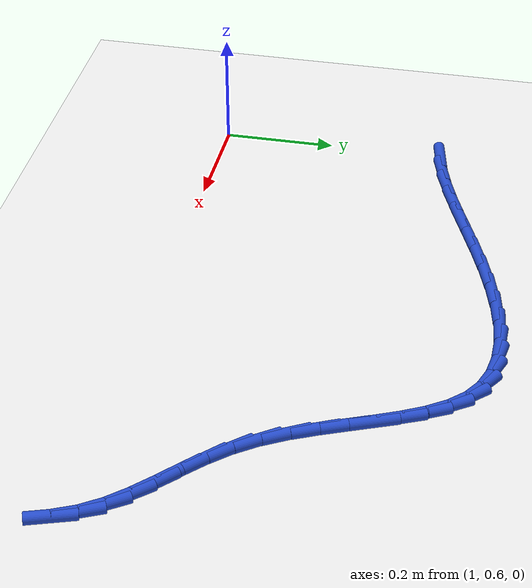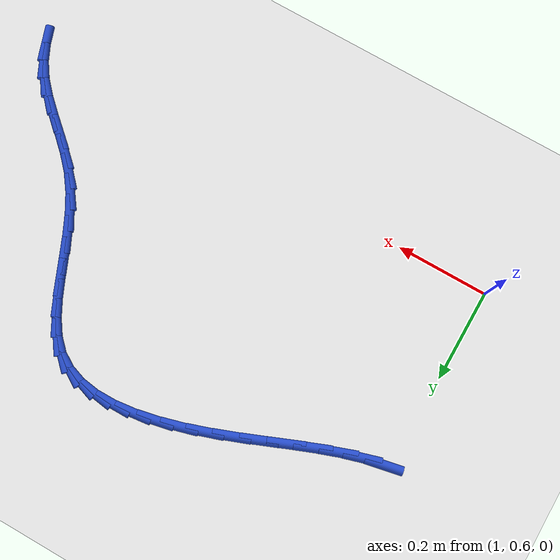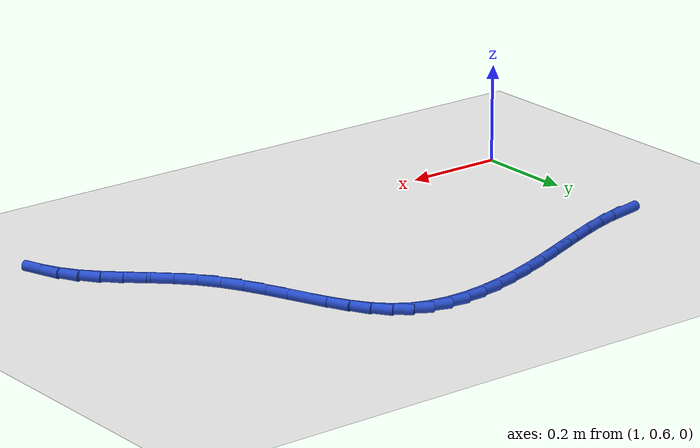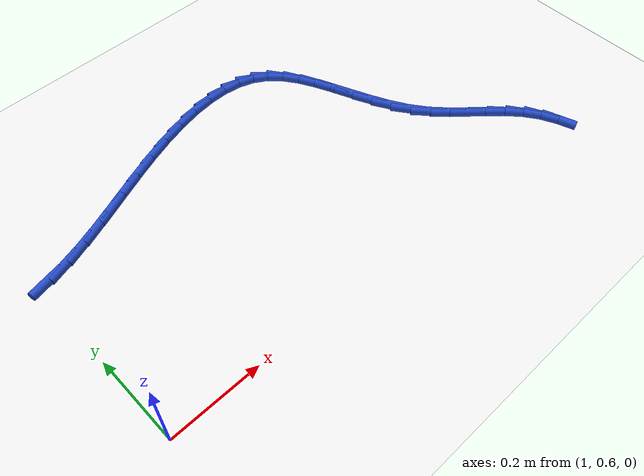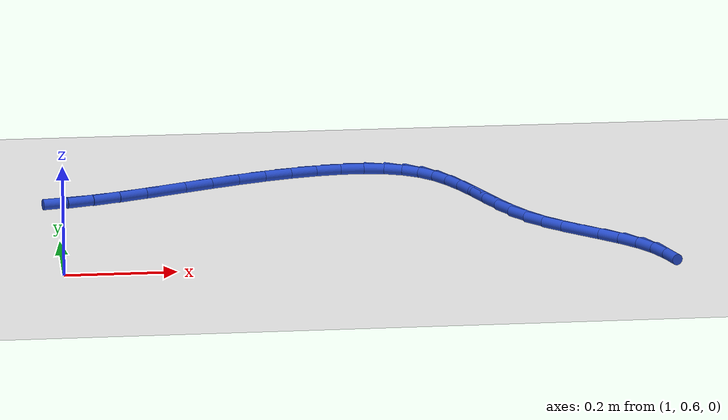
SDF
<sdf version="1.6">
 <world name="default">
  <model name="ground_plane">
   <static>1</static>
   <link name="link">
    <collision name="collision">
     <geometry><plane><normal>0 0 1</normal><size>100 100</size></plane></geometry>
     <surface><friction><ode><mu>100</mu><mu2>50</mu2></ode></friction></surface>
    </collision>
    <visual name="visual">
     <cast_shadows>0</cast_shadows>
     <geometry><plane><normal>0 0 1</normal><size>100 100</size></plane></geometry>
     <material>
      <script><uri>file://media/materials/scripts/gazebo.material</uri><name>Gazebo/WhiteGlow</name></script>
     </material>
    </visual>
   </link>
  </model>
  <model name="line">
   <link name="link_47">
    <pose>1.0167651782790044 1.0086989685760086 0.01 0 1.57 0.20363390826413982</pose>
    <collision name="collision">
     <geometry><cylinder><radius>0.01</radius><length>0.08</length></cylinder></geometry>
    </collision>
    <visual name="visual">
     <material>
      <script><name>Gazebo/Blue</name><uri>file://media/materials/scripts/gazebo.material</uri></script>
     </material>
     <geometry><cylinder><radius>0.01</radius><length>0.08</length></cylinder></geometry>
    </visual>
   </link>
   <link name="link_48">
    <pose>1.0609571213883615 1.017824431223215 0.01 0 1.57 0.29081727731757046</pose>
    <collision name="collision">
     <geometry><cylinder><radius>0.01</radius><length>0.08</length></cylinder></geometry>
    </collision>
    <visual name="visual">
     <material>
      <script><name>Gazebo/Blue</name><uri>file://media/materials/scripts/gazebo.material</uri></script>
     </material>
     <geometry><cylinder><radius>0.01</radius><length>0.08</length></cylinder></geometry>
    </visual>
   </link>
   <link name="link_49">
    <pose>1.1078824874151785 1.031869336862523 0.01 0 1.57 0.3456499086569815</pose>
    <collision name="collision">
     <geometry><cylinder><radius>0.01</radius><length>0.08</length></cylinder></geometry>
    </collision>
    <visual name="visual">
     <material>
      <script><name>Gazebo/Blue</name><uri>file://media/materials/scripts/gazebo.material</uri></script>
     </material>
     <geometry><cylinder><radius>0.01</radius><length>0.08</length></cylinder></geometry>
    </visual>
   </link>
   <link name="link_50">
    <pose>1.156904102787615 1.0495223419738784 0.01 0 1.57 0.3763580443483489</pose>
    <collision name="collision">
     <geometry><cylinder><radius>0.01</radius><length>0.08</length></cylinder></geometry>
    </collision>
    <visual name="visual">
     <material>
      <script><name>Gazebo/Blue</name><uri>file://media/materials/scripts/gazebo.material</uri></script>
     </material>
     <geometry><cylinder><radius>0.01</radius><length>0.08</length></cylinder></geometry>
    </visual>
   </link>
   <link name="link_51">
    <pose>1.207384793933829 1.069472103037227 0.01 0 1.57 0.38744593252711956</pose>
    <collision name="collision">
     <geometry><cylinder><radius>0.01</radius><length>0.08</length></cylinder></geometry>
    </collision>
    <visual name="visual">
     <material>
      <script><name>Gazebo/Blue</name><uri>file://media/materials/scripts/gazebo.material</uri></script>
     </material>
     <geometry><cylinder><radius>0.01</radius><length>0.08</length></cylinder></geometry>
    </visual>
   </link>
   <link name="link_52">
    <pose>1.258687387281979 1.0904072765325146 0.01 0 1.57 0.3807460116582707</pose>
    <collision name="collision">
     <geometry><cylinder><radius>0.01</radius><length>0.08</length></cylinder></geometry>
    </collision>
    <visual name="visual">
     <material>
      <script><name>Gazebo/Blue</name><uri>file://media/materials/scripts/gazebo.material</uri></script>
     </material>
     <geometry><cylinder><radius>0.01</radius><length>0.08</length></cylinder></geometry>
    </visual>
   </link>
   <link name="link_53">
    <pose>1.310174709260223 1.1110165189396866 0.01 0 1.57 0.35631748665630925</pose>
    <collision name="collision">
     <geometry><cylinder><radius>0.01</radius><length>0.08</length></cylinder></geometry>
    </collision>
    <visual name="visual">
     <material>
      <script><name>Gazebo/Blue</name><uri>file://media/materials/scripts/gazebo.material</uri></script>
     </material>
     <geometry><cylinder><radius>0.01</radius><length>0.08</length></cylinder></geometry>
    </visual>
   </link>
   <link name="link_54">
    <pose>1.3612157297149343 1.1300142115183733 0.01 0 1.57 0.31801333983110247</pose>
    <collision name="collision">
     <geometry><cylinder><radius>0.01</radius><length>0.08</length></cylinder></geometry>
    </collision>
    <visual name="visual">
     <material>
      <script><name>Gazebo/Blue</name><uri>file://media/materials/scripts/gazebo.material</uri></script>
     </material>
     <geometry><cylinder><radius>0.01</radius><length>0.08</length></cylinder></geometry>
    </visual>
   </link>
   <link name="link_55">
    <pose>1.4112693114642254 1.1464911508743354 0.01 0 1.57 0.267779421817082</pose>
    <collision name="collision">
     <geometry><cylinder><radius>0.01</radius><length>0.08</length></cylinder></geometry>
    </collision>
    <visual name="visual">
     <material>
      <script><name>Gazebo/Blue</name><uri>file://media/materials/scripts/gazebo.material</uri></script>
     </material>
     <geometry><cylinder><radius>0.01</radius><length>0.08</length></cylinder></geometry>
    </visual>
   </link>
   <link name="link_56">
    <pose>1.459862492969172 1.1598236104169863 0.01 0 1.57 0.2023166972554978</pose>
    <collision name="collision">
     <geometry><cylinder><radius>0.01</radius><length>0.08</length></cylinder></geometry>
    </collision>
    <visual name="visual">
     <material>
      <script><name>Gazebo/Blue</name><uri>file://media/materials/scripts/gazebo.material</uri></script>
     </material>
     <geometry><cylinder><radius>0.01</radius><length>0.08</length></cylinder></geometry>
    </visual>
   </link>
   <link name="link_57">
    <pose>1.506524008256687 1.1693949635212724 0.01 0 1.57 0.11681295212326884</pose>
    <collision name="collision">
     <geometry><cylinder><radius>0.01</radius><length>0.08</length></cylinder></geometry>
    </collision>
    <visual name="visual">
     <material>
      <script><name>Gazebo/Blue</name><uri>file://media/materials/scripts/gazebo.material</uri></script>
     </material>
     <geometry><cylinder><radius>0.01</radius><length>0.08</length></cylinder></geometry>
    </visual>
   </link>
   <link name="link_58">
    <pose>1.5507825913536817 1.1745885835621388 0.01 0 1.57 0.0048148308334593415</pose>
    <collision name="collision">
     <geometry><cylinder><radius>0.01</radius><length>0.08</length></cylinder></geometry>
    </collision>
    <visual name="visual">
     <material>
      <script><name>Gazebo/Blue</name><uri>file://media/materials/scripts/gazebo.material</uri></script>
     </material>
     <geometry><cylinder><radius>0.01</radius><length>0.08</length></cylinder></geometry>
    </visual>
   </link>
   <link name="link_59">
    <pose>1.5921669762870687 1.174787843914533 0.01 0 1.57 -0.1413197701401831</pose>
    <collision name="collision">
     <geometry><cylinder><radius>0.01</radius><length>0.08</length></cylinder></geometry>
    </collision>
    <visual name="visual">
     <material>
      <script><name>Gazebo/Blue</name><uri>file://media/materials/scripts/gazebo.material</uri></script>
     </material>
     <geometry><cylinder><radius>0.01</radius><length>0.08</length></cylinder></geometry>
    </visual>
   </link>
   <link name="link_60">
    <pose>1.6302058970837594 1.1693761179534001 0.01 0 1.57 -0.32783788104168265</pose>
    <collision name="collision">
     <geometry><cylinder><radius>0.01</radius><length>0.08</length></cylinder></geometry>
    </collision>
    <visual name="visual">
     <material>
      <script><name>Gazebo/Blue</name><uri>file://media/materials/scripts/gazebo.material</uri></script>
     </material>
     <geometry><cylinder><radius>0.01</radius><length>0.08</length></cylinder></geometry>
    </visual>
   </link>
   <link name="link_61">
    <pose>1.6644280877706663 1.1577367790536865 0.01 0 1.57 -0.5531671321172079</pose>
    <collision name="collision">
     <geometry><cylinder><radius>0.01</radius><length>0.08</length></cylinder></geometry>
    </collision>
    <visual name="visual">
     <material>
      <script><name>Gazebo/Blue</name><uri>file://media/materials/scripts/gazebo.material</uri></script>
     </material>
     <geometry><cylinder><radius>0.01</radius><length>0.08</length></cylinder></geometry>
    </visual>
   </link>
   <link name="link_62">
    <pose>1.694362319674856 1.1392532482664355 0.01 0 1.57 -0.7871714292794221</pose>
    <collision name="collision">
     <geometry><cylinder><radius>0.01</radius><length>0.08</length></cylinder></geometry>
    </collision>
    <visual name="visual">
     <material>
      <script><name>Gazebo/Blue</name><uri>file://media/materials/scripts/gazebo.material</uri></script>
     </material>
     <geometry><cylinder><radius>0.01</radius><length>0.08</length></cylinder></geometry>
    </visual>
   </link>
   <link name="link_63">
    <pose>1.7198353026389053 1.1136897639814174 0.01 0 1.57 -0.96536039960385</pose>
    <collision name="collision">
     <geometry><cylinder><radius>0.01</radius><length>0.08</length></cylinder></geometry>
    </collision>
    <visual name="visual">
     <material>
      <script><name>Gazebo/Blue</name><uri>file://media/materials/scripts/gazebo.material</uri></script>
     </material>
     <geometry><cylinder><radius>0.01</radius><length>0.08</length></cylinder></geometry>
    </visual>
   </link>
   <link name="link_64">
    <pose>1.7416918430098158 1.082111869324773 0.01 0 1.57 -1.0814972308968964</pose>
    <collision name="collision">
     <geometry><cylinder><radius>0.01</radius><length>0.08</length></cylinder></geometry>
    </collision>
    <visual name="visual">
     <material>
      <script><name>Gazebo/Blue</name><uri>file://media/materials/scripts/gazebo.material</uri></script>
     </material>
     <geometry><cylinder><radius>0.01</radius><length>0.08</length></cylinder></geometry>
    </visual>
   </link>
   <link name="link_65">
    <pose>1.7609940276946041 1.0458628298395667 0.01 0 1.57 -1.147936045333331</pose>
    <collision name="collision">
     <geometry><cylinder><radius>0.01</radius><length>0.08</length></cylinder></geometry>
    </collision>
    <visual name="visual">
     <material>
      <script><name>Gazebo/Blue</name><uri>file://media/materials/scripts/gazebo.material</uri></script>
     </material>
     <geometry><cylinder><radius>0.01</radius><length>0.08</length></cylinder></geometry>
    </visual>
   </link>
   <link name="link_66">
    <pose>1.778803943600286 1.0062859110688636 0.01 0 1.57 -1.174726009654299</pose>
    <collision name="collision">
     <geometry><cylinder><radius>0.01</radius><length>0.08</length></cylinder></geometry>
    </collision>
    <visual name="visual">
     <material>
      <script><name>Gazebo/Blue</name><uri>file://media/materials/scripts/gazebo.material</uri></script>
     </material>
     <geometry><cylinder><radius>0.01</radius><length>0.08</length></cylinder></geometry>
    </visual>
   </link>
   <link name="link_67">
    <pose>1.79618367763388 0.9647243785557277 0.01 0 1.57 -1.167413084196343</pose>
    <collision name="collision">
     <geometry><cylinder><radius>0.01</radius><length>0.08</length></cylinder></geometry>
    </collision>
    <visual name="visual">
     <material>
      <script><name>Gazebo/Blue</name><uri>file://media/materials/scripts/gazebo.material</uri></script>
     </material>
     <geometry><cylinder><radius>0.01</radius><length>0.08</length></cylinder></geometry>
    </visual>
   </link>
   <link name="link_68">
    <pose>1.8141953167024012 0.9225214978432243 0.01 0 1.57 -1.1274920412151415</pose>
    <collision name="collision">
     <geometry><cylinder><radius>0.01</radius><length>0.08</length></cylinder></geometry>
    </collision>
    <visual name="visual">
     <material>
      <script><name>Gazebo/Blue</name><uri>file://media/materials/scripts/gazebo.material</uri></script>
     </material>
     <geometry><cylinder><radius>0.01</radius><length>0.08</length></cylinder></geometry>
    </visual>
   </link>
   <link name="link_69">
    <pose>1.8339009477128678 0.8810205344744182 0.01 0 1.57 -1.0532652184335236</pose>
    <collision name="collision">
     <geometry><cylinder><radius>0.01</radius><length>0.08</length></cylinder></geometry>
    </collision>
    <visual name="visual">
     <material>
      <script><name>Gazebo/Blue</name><uri>file://media/materials/scripts/gazebo.material</uri></script>
     </material>
     <geometry><cylinder><radius>0.01</radius><length>0.08</length></cylinder></geometry>
    </visual>
   </link>
   <link name="link_70">
    <pose>1.8563626575722953 0.8415647539923743 0.01 0 1.57 -0.9419493873683122</pose>
    <collision name="collision">
     <geometry><cylinder><radius>0.01</radius><length>0.08</length></cylinder></geometry>
    </collision>
    <visual name="visual">
     <material>
      <script><name>Gazebo/Blue</name><uri>file://media/materials/scripts/gazebo.material</uri></script>
     </material>
     <geometry><cylinder><radius>0.01</radius><length>0.08</length></cylinder></geometry>
    </visual>
   </link>
   <link name="link_71">
    <pose>1.8826147861111961 0.8054719207904373 0.01 0 1.57 -0.8261549318681671</pose>
    <collision name="collision">
     <geometry><cylinder><radius>0.01</radius><length>0.08</length></cylinder></geometry>
    </collision>
    <visual name="visual">
     <material>
      <script><name>Gazebo/Blue</name><uri>file://media/materials/scripts/gazebo.material</uri></script>
     </material>
     <geometry><cylinder><radius>0.01</radius><length>0.08</length></cylinder></geometry>
    </visual>
   </link>
   <link name="link_72">
    <pose>1.9125404688837726 0.7730017767131067 0.01 0 1.57 -0.7540653475367733</pose>
    <collision name="collision">
     <geometry><cylinder><radius>0.01</radius><length>0.08</length></cylinder></geometry>
    </collision>
    <visual name="visual">
     <material>
      <script><name>Gazebo/Blue</name><uri>file://media/materials/scripts/gazebo.material</uri></script>
     </material>
     <geometry><cylinder><radius>0.01</radius><length>0.08</length></cylinder></geometry>
    </visual>
   </link>
   <link name="link_73">
    <pose>1.9444840148615217 0.7429997939945471 0.01 0 1.57 -0.7295182722505341</pose>
    <collision name="collision">
     <geometry><cylinder><radius>0.01</radius><length>0.08</length></cylinder></geometry>
    </collision>
    <visual name="visual">
     <material>
      <script><name>Gazebo/Blue</name><uri>file://media/materials/scripts/gazebo.material</uri></script>
     </material>
     <geometry><cylinder><radius>0.01</radius><length>0.08</length></cylinder></geometry>
    </visual>
   </link>
   <link name="link_74">
    <pose>1.9766824089042447 0.71421280787413 0.01 0 1.57 -0.7540707573706579</pose>
    <collision name="collision">
     <geometry><cylinder><radius>0.01</radius><length>0.08</length></cylinder></geometry>
    </collision>
    <visual name="visual">
     <material>
      <script><name>Gazebo/Blue</name><uri>file://media/materials/scripts/gazebo.material</uri></script>
     </material>
     <geometry><cylinder><radius>0.01</radius><length>0.08</length></cylinder></geometry>
    </visual>
   </link>
   <link name="link_75">
    <pose>2.007372635871744 0.6853876535912277 0.01 0 1.57 -0.8322469300334641</pose>
    <collision name="collision">
     <geometry><cylinder><radius>0.01</radius><length>0.08</length></cylinder></geometry>
    </collision>
    <visual name="visual">
     <material>
      <script><name>Gazebo/Blue</name><uri>file://media/materials/scripts/gazebo.material</uri></script>
     </material>
     <geometry><cylinder><radius>0.01</radius><length>0.08</length></cylinder></geometry>
    </visual>
   </link>
   <link name="link_76">
    <pose>2.034791680623822 0.6552711663852134 0.01 0 1.57 -0.9694471010013458</pose>
    <collision name="collision">
     <geometry><cylinder><radius>0.01</radius><length>0.08</length></cylinder></geometry>
    </collision>
    <visual name="visual">
     <material>
      <script><name>Gazebo/Blue</name><uri>file://media/materials/scripts/gazebo.material</uri></script>
     </material>
     <geometry><cylinder><radius>0.01</radius><length>0.08</length></cylinder></geometry>
    </visual>
   </link>
   <link name="link_77">
    <pose>2.057195049206189 0.6226188760591167 0.01 0 1.57 -1.1292939003531757</pose>
    <collision name="collision">
     <geometry><cylinder><radius>0.01</radius><length>0.08</length></cylinder></geometry>
    </collision>
    <visual name="visual">
     <material>
      <script><name>Gazebo/Blue</name><uri>file://media/materials/scripts/gazebo.material</uri></script>
     </material>
     <geometry><cylinder><radius>0.01</radius><length>0.08</length></cylinder></geometry>
    </visual>
   </link>
   <link name="link_78">
    <pose>2.0741276368333073 0.5867916017459214 0.01 0 1.57 -1.2436740747268564</pose>
    <collision name="collision">
     <geometry><cylinder><radius>0.01</radius><length>0.08</length></cylinder></geometry>
    </collision>
    <visual name="visual">
     <material>
      <script><name>Gazebo/Blue</name><uri>file://media/materials/scripts/gazebo.material</uri></script>
     </material>
     <geometry><cylinder><radius>0.01</radius><length>0.08</length></cylinder></geometry>
    </visual>
   </link>
  </model>
 </world>
</sdf>
